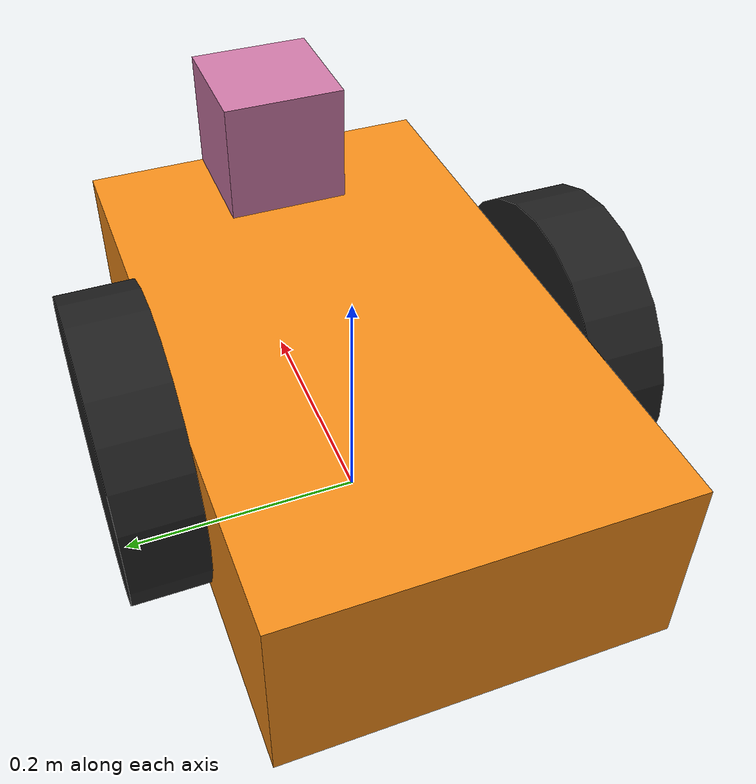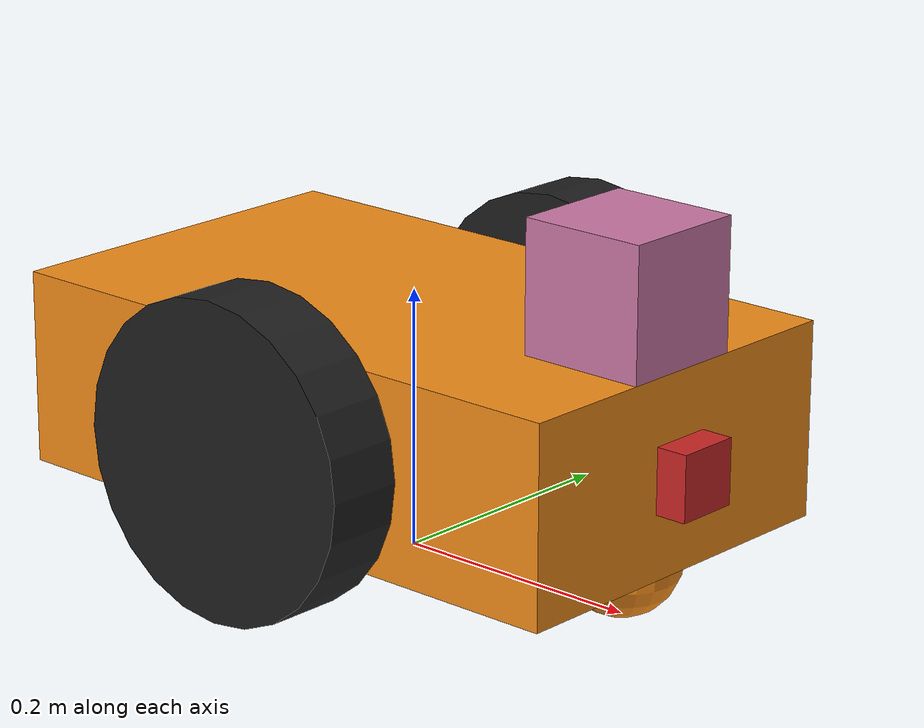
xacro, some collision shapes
<?xml version="1.0"?>

<robot name="my_robot" xmlns:xacro="http://www.ros.org/wiki/xacro">

<xacro:include filename="$(find my_robot)/urdf/my_robot.gazebo" />

  <!-- Robot footprint           -->

  <link name="robot_footprint"/>

  <joint name="robot_footprint_joint" type="fixed">
    <origin xyz="0 0 0.12" rpy="0 0 0"/>
    <parent link="robot_footprint"/>
    <child link="chassis"/>
  </joint>

  <!-- Chassis                   -->

  <link name="chassis">

    <inertial>
      <mass value="15.0"/>
      <origin xyz="0 0 0" rpy="0 0 0"/>
      <inertia
        ixx="0.1" ixy="0" ixz="0"
        iyy="0.1" iyz="0"
        izz="0.1"/>
    </inertial>

    <!-- Main chassis collision -->
    <collision name="collision">
      <origin xyz="0 0 0" rpy="0 0 0"/>
      <geometry>
        <box size="0.5 0.3 0.15"/>
      </geometry>
    </collision>

    <!-- Main chassis visual -->
    <visual name="chassis_visual">
      <origin xyz="0 0 0" rpy="0 0 0"/>
      <geometry>
        <box size="0.5 0.3 0.15"/>
      </geometry>
    </visual>

    <!-- Back caster -->
    <collision name="back_caster_collision">
      <origin xyz="-0.2 0 -0.075" rpy="0 0 0"/>
      <geometry>
        <sphere radius="0.0449"/>
      </geometry>
    </collision>

    <visual name="back_caster_visual">
      <origin xyz="-0.2 0 -0.075" rpy="0 0 0"/>
      <geometry>
        <sphere radius="0.045"/>
      </geometry>
    </visual>

    <!-- Front caster -->
    <collision name="front_caster_collision">
      <origin xyz="0.2 0 -0.075" rpy="0 0 0"/>
      <geometry>
        <sphere radius="0.0449"/>
      </geometry>
    </collision>

    <visual name="front_caster_visual">
      <origin xyz="0.2 0 -0.075" rpy="0 0 0"/>
      <geometry>
        <sphere radius="0.045"/>
      </geometry>
    </visual>

  </link>

  <!-- Left wheel                -->

  <link name="left_wheel">

    <inertial>
      <origin xyz="0 0 0" rpy="0 1.5707 1.5707"/>
      <mass value="5"/>
      <inertia
        ixx="0.1" ixy="0" ixz="0"
        iyy="0.1" iyz="0"
        izz="0.1"/>
    </inertial>

    <collision name="left_wheel_collision">
      <origin xyz="0 0 0" rpy="0 1.5707 1.5707"/>
      <geometry>
        <cylinder radius="0.12" length="0.06"/>
      </geometry>
    </collision>

    <visual name="left_wheel_visual">
      <origin xyz="0 0 0" rpy="0 1.5707 1.5707"/>
      <geometry>
        <cylinder radius="0.12" length="0.06"/>
      </geometry>
    </visual>

  </link>

  <!-- Left wheel joint -->
  <joint name="left_wheel_hinge" type="continuous">
    <origin xyz="0 0.18 0" rpy="0 0 0"/>
    <parent link="chassis"/>
    <child link="left_wheel"/>
    <axis xyz="0 1 0"/>
    <limit effort="10000" velocity="1000"/>
    <dynamics damping="1.0" friction="1.0"/>
  </joint>

  <!-- Right wheel               -->

  <link name="right_wheel">

    <inertial>
      <origin xyz="0 0 0" rpy="0 1.5707 1.5707"/>
      <mass value="5"/>
      <inertia
        ixx="0.1" ixy="0" ixz="0"
        iyy="0.1" iyz="0"
        izz="0.1"/>
    </inertial>

    <collision name="right_wheel_collision">
      <origin xyz="0 0 0" rpy="0 1.5707 1.5707"/>
      <geometry>
        <cylinder radius="0.12" length="0.06"/>
      </geometry>
    </collision>

    <visual name="right_wheel_visual">
      <origin xyz="0 0 0" rpy="0 1.5707 1.5707"/>
      <geometry>
        <cylinder radius="0.12" length="0.06"/>
      </geometry>
    </visual>

  </link>

  <!-- Right wheel joint -->
  <joint name="right_wheel_hinge" type="continuous">
    <origin xyz="0 -0.18 0" rpy="0 0 0"/>
    <parent link="chassis"/>
    <child link="right_wheel"/>
    <axis xyz="0 1 0"/>
    <limit effort="10000" velocity="1000"/>
    <dynamics damping="1.0" friction="1.0"/>
  </joint>

<!-- Camera                    -->

<link name="camera_link">

  <visual name="camera_visual">
    <origin xyz="0 0 0" rpy="0 0 0"/>
    <geometry>
      <box size="0.05 0.05 0.05"/>
    </geometry>
  </visual>

  <collision name="camera_collision">
    <origin xyz="0 0 0" rpy="0 0 0"/>
    <geometry>
      <box size="0.05 0.05 0.05"/>
    </geometry>
  </collision>

  <inertial>
    <origin xyz="0 0 0" rpy="0 0 0"/>
    <mass value="0.1"/>
    <inertia
      ixx="1e-6"
      ixy="0"
      ixz="0"
      iyy="1e-6"
      iyz="0"
      izz="1e-6"/>
  </inertial>

</link>

<!-- Camera fixed joint -->
<joint name="camera_joint" type="fixed">
  <origin xyz="0.25 0 0" rpy="0 0 0"/>
  <parent link="chassis"/>
  <child link="camera_link"/>
  <axis xyz="0 1 0"/>
</joint>

<joint name="camera_optical_joint" type="fixed">
  <origin xyz="0 0 0" rpy="-1.5707 0 -1.5707"/>
  <parent link="camera_link"/>
  <child link="camera_link_optical"/>
</joint>

<link name="camera_link_optical">
</link>

<!-- Hokuyo LiDAR              -->

<link name="hokuyo">

  <visual name="hokuyo_visual">
    <origin xyz="0 0 0" rpy="0 0 0"/>
    <geometry>
      <mesh filename="package://my_robot/meshes/hokuyo.dae"/>
    </geometry>
  </visual>

  <collision name="hokuyo_collision">
    <origin xyz="0 0 0" rpy="0 0 0"/>
    <geometry>
      <box size="0.1 0.1 0.1"/>
    </geometry>
  </collision>

  <inertial>
    <origin xyz="0 0 0" rpy="0 0 0"/>
    <mass value="1e-5"/>
    <inertia
      ixx="1e-6"
      ixy="0"
      ixz="0"
      iyy="1e-6"
      iyz="0"
      izz="1e-6"/>
  </inertial>

</link>

<!-- Hokuyo fixed joint -->
<joint name="hokuyo_joint" type="fixed">
  <origin xyz="0.2 0 0.125" rpy="0 0 0"/>
  <parent link="chassis"/>
  <child link="hokuyo"/>
  <axis xyz="0 1 0"/>
</joint>

<gazebo reference="chassis">
    <material>Gazebo/Orange</material>
</gazebo>
<gazebo reference="left_wheel">
    <material>Gazebo/Black</material>
</gazebo>
<gazebo reference="right_wheel">
    <material>Gazebo/Black</material>
</gazebo>
<gazebo reference="camera_link">
    <material>Gazebo/Red</material>
</gazebo>

</robot>
